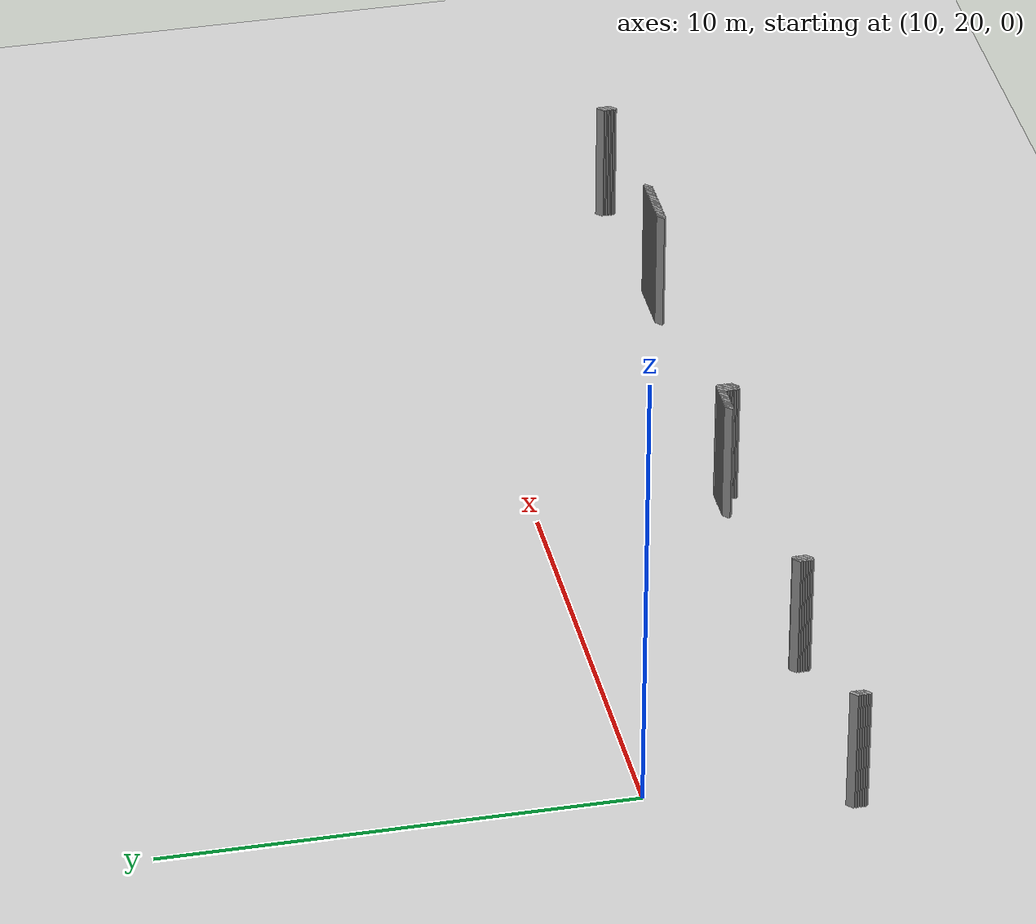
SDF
<sdf version="1.5">
 <world name="default">
  <include><uri>model://ground_plane</uri></include>
  <include><uri>model://sun</uri></include>
  <model name="grey_wall_1261">
   <static>1</static>
   <link name="link">
    <pose>19.4 16.0  1.4 0 0 -0.785398163397</pose>
    <collision name="collision"><geometry><box><size>0.0707106781187 .2  2.8</size></box></geometry></collision>
    <visual name="visual">
     <cast_shadows>0</cast_shadows>
     <geometry><box><size>0.0707106781187 .2  2.8</size></box></geometry>
     <material>
      <script>
       <uri>model://grey_wall/materials/scripts</uri>
       <uri>model://grey_wall/materials/textures</uri>
       <name>vrc/grey_wall</name>
      </script>
     </material>
    </visual>
   </link>
  </model>
  <model name="grey_wall_1262">
   <static>1</static>
   <link name="link">
    <pose>19.45 16.0  1.4 0 0 -0.785398163397</pose>
    <collision name="collision"><geometry><box><size>0.0707106781187 .2  2.8</size></box></geometry></collision>
    <visual name="visual">
     <cast_shadows>0</cast_shadows>
     <geometry><box><size>0.0707106781187 .2  2.8</size></box></geometry>
     <material>
      <script>
       <uri>model://grey_wall/materials/scripts</uri>
       <uri>model://grey_wall/materials/textures</uri>
       <name>vrc/grey_wall</name>
      </script>
     </material>
    </visual>
   </link>
  </model>
  <model name="grey_wall_1263">
   <static>1</static>
   <link name="link">
    <pose>19.5 16.0  1.4 0 0 -0.785398163397</pose>
    <collision name="collision"><geometry><box><size>0.0707106781187 .2  2.8</size></box></geometry></collision>
    <visual name="visual">
     <cast_shadows>0</cast_shadows>
     <geometry><box><size>0.0707106781187 .2  2.8</size></box></geometry>
     <material>
      <script>
       <uri>model://grey_wall/materials/scripts</uri>
       <uri>model://grey_wall/materials/textures</uri>
       <name>vrc/grey_wall</name>
      </script>
     </material>
    </visual>
   </link>
  </model>
  <model name="grey_wall_1264">
   <static>1</static>
   <link name="link">
    <pose>19.55 16.0  1.4 0 0 -0.785398163397</pose>
    <collision name="collision"><geometry><box><size>0.0707106781187 .2  2.8</size></box></geometry></collision>
    <visual name="visual">
     <cast_shadows>0</cast_shadows>
     <geometry><box><size>0.0707106781187 .2  2.8</size></box></geometry>
     <material>
      <script>
       <uri>model://grey_wall/materials/scripts</uri>
       <uri>model://grey_wall/materials/textures</uri>
       <name>vrc/grey_wall</name>
      </script>
     </material>
    </visual>
   </link>
  </model>
  <model name="grey_wall_1265">
   <static>1</static>
   <link name="link">
    <pose>19.6 16.0  1.4 0 0 -0.785398163397</pose>
    <collision name="collision"><geometry><box><size>0.0707106781187 .2  2.8</size></box></geometry></collision>
    <visual name="visual">
     <cast_shadows>0</cast_shadows>
     <geometry><box><size>0.0707106781187 .2  2.8</size></box></geometry>
     <material>
      <script>
       <uri>model://grey_wall/materials/scripts</uri>
       <uri>model://grey_wall/materials/textures</uri>
       <name>vrc/grey_wall</name>
      </script>
     </material>
    </visual>
   </link>
  </model>
  <model name="grey_wall_1266">
   <static>1</static>
   <link name="link">
    <pose>19.65 16.0  1.4 0 0 -0.785398163397</pose>
    <collision name="collision"><geometry><box><size>0.0707106781187 .2  2.8</size></box></geometry></collision>
    <visual name="visual">
     <cast_shadows>0</cast_shadows>
     <geometry><box><size>0.0707106781187 .2  2.8</size></box></geometry>
     <material>
      <script>
       <uri>model://grey_wall/materials/scripts</uri>
       <uri>model://grey_wall/materials/textures</uri>
       <name>vrc/grey_wall</name>
      </script>
     </material>
    </visual>
   </link>
  </model>
  <model name="grey_wall_1267">
   <static>1</static>
   <link name="link">
    <pose>19.7 16.0  1.4 0 0 -0.785398163397</pose>
    <collision name="collision"><geometry><box><size>0.0707106781187 .2  2.8</size></box></geometry></collision>
    <visual name="visual">
     <cast_shadows>0</cast_shadows>
     <geometry><box><size>0.0707106781187 .2  2.8</size></box></geometry>
     <material>
      <script>
       <uri>model://grey_wall/materials/scripts</uri>
       <uri>model://grey_wall/materials/textures</uri>
       <name>vrc/grey_wall</name>
      </script>
     </material>
    </visual>
   </link>
  </model>
  <model name="grey_wall_1268">
   <static>1</static>
   <link name="link">
    <pose>19.75 16.0  1.4 0 0 -0.785398163397</pose>
    <collision name="collision"><geometry><box><size>0.0707106781187 .2  2.8</size></box></geometry></collision>
    <visual name="visual">
     <cast_shadows>0</cast_shadows>
     <geometry><box><size>0.0707106781187 .2  2.8</size></box></geometry>
     <material>
      <script>
       <uri>model://grey_wall/materials/scripts</uri>
       <uri>model://grey_wall/materials/textures</uri>
       <name>vrc/grey_wall</name>
      </script>
     </material>
    </visual>
   </link>
  </model>
  <model name="grey_wall_1269">
   <static>1</static>
   <link name="link">
    <pose>19.8 16.0  1.4 0 0 -0.785398163397</pose>
    <collision name="collision"><geometry><box><size>0.0707106781187 .2  2.8</size></box></geometry></collision>
    <visual name="visual">
     <cast_shadows>0</cast_shadows>
     <geometry><box><size>0.0707106781187 .2  2.8</size></box></geometry>
     <material>
      <script>
       <uri>model://grey_wall/materials/scripts</uri>
       <uri>model://grey_wall/materials/textures</uri>
       <name>vrc/grey_wall</name>
      </script>
     </material>
    </visual>
   </link>
  </model>
  <model name="grey_wall_1270">
   <static>1</static>
   <link name="link">
    <pose>19.85 16.0  1.4 0 0 -0.785398163397</pose>
    <collision name="collision"><geometry><box><size>0.0707106781187 .2  2.8</size></box></geometry></collision>
    <visual name="visual">
     <cast_shadows>0</cast_shadows>
     <geometry><box><size>0.0707106781187 .2  2.8</size></box></geometry>
     <material>
      <script>
       <uri>model://grey_wall/materials/scripts</uri>
       <uri>model://grey_wall/materials/textures</uri>
       <name>vrc/grey_wall</name>
      </script>
     </material>
    </visual>
   </link>
  </model>
  <model name="grey_wall_1271">
   <static>1</static>
   <link name="link">
    <pose>19.9 16.0  1.4 0 0 -0.785398163397</pose>
    <collision name="collision"><geometry><box><size>0.0707106781187 .2  2.8</size></box></geometry></collision>
    <visual name="visual">
     <cast_shadows>0</cast_shadows>
     <geometry><box><size>0.0707106781187 .2  2.8</size></box></geometry>
     <material>
      <script>
       <uri>model://grey_wall/materials/scripts</uri>
       <uri>model://grey_wall/materials/textures</uri>
       <name>vrc/grey_wall</name>
      </script>
     </material>
    </visual>
   </link>
  </model>
  <model name="grey_wall_1272">
   <static>1</static>
   <link name="link">
    <pose>19.95 16.0  1.4 0 0 -0.785398163397</pose>
    <collision name="collision"><geometry><box><size>0.0707106781187 .2  2.8</size></box></geometry></collision>
    <visual name="visual">
     <cast_shadows>0</cast_shadows>
     <geometry><box><size>0.0707106781187 .2  2.8</size></box></geometry>
     <material>
      <script>
       <uri>model://grey_wall/materials/scripts</uri>
       <uri>model://grey_wall/materials/textures</uri>
       <name>vrc/grey_wall</name>
      </script>
     </material>
    </visual>
   </link>
  </model>
  <model name="grey_wall_1273">
   <static>1</static>
   <link name="link">
    <pose>20.0 16.0  1.4 0 0 -0.785398163397</pose>
    <collision name="collision"><geometry><box><size>0.0707106781187 .2  2.8</size></box></geometry></collision>
    <visual name="visual">
     <cast_shadows>0</cast_shadows>
     <geometry><box><size>0.0707106781187 .2  2.8</size></box></geometry>
     <material>
      <script>
       <uri>model://grey_wall/materials/scripts</uri>
       <uri>model://grey_wall/materials/textures</uri>
       <name>vrc/grey_wall</name>
      </script>
     </material>
    </visual>
   </link>
  </model>
  <model name="grey_wall_1274">
   <static>1</static>
   <link name="link">
    <pose>20.05 16.0  1.4 0 0 -0.785398163397</pose>
    <collision name="collision"><geometry><box><size>0.0707106781187 .2  2.8</size></box></geometry></collision>
    <visual name="visual">
     <cast_shadows>0</cast_shadows>
     <geometry><box><size>0.0707106781187 .2  2.8</size></box></geometry>
     <material>
      <script>
       <uri>model://grey_wall/materials/scripts</uri>
       <uri>model://grey_wall/materials/textures</uri>
       <name>vrc/grey_wall</name>
      </script>
     </material>
    </visual>
   </link>
  </model>
  <model name="grey_wall_1275">
   <static>1</static>
   <link name="link">
    <pose>20.1 16.0  1.4 0 0 -0.785398163397</pose>
    <collision name="collision"><geometry><box><size>0.0707106781187 .2  2.8</size></box></geometry></collision>
    <visual name="visual">
     <cast_shadows>0</cast_shadows>
     <geometry><box><size>0.0707106781187 .2  2.8</size></box></geometry>
     <material>
      <script>
       <uri>model://grey_wall/materials/scripts</uri>
       <uri>model://grey_wall/materials/textures</uri>
       <name>vrc/grey_wall</name>
      </script>
     </material>
    </visual>
   </link>
  </model>
  <model name="grey_wall_1276">
   <static>1</static>
   <link name="link">
    <pose>20.2 16.0  1.4 0 0 -0.785398163397</pose>
    <collision name="collision"><geometry><box><size>0.0707106781187 .2  2.8</size></box></geometry></collision>
    <visual name="visual">
     <cast_shadows>0</cast_shadows>
     <geometry><box><size>0.0707106781187 .2  2.8</size></box></geometry>
     <material>
      <script>
       <uri>model://grey_wall/materials/scripts</uri>
       <uri>model://grey_wall/materials/textures</uri>
       <name>vrc/grey_wall</name>
      </script>
     </material>
    </visual>
   </link>
  </model>
  <model name="grey_wall_1277">
   <static>1</static>
   <link name="link">
    <pose>31.75 16.0  1.4 0 0 -0.785398163397</pose>
    <collision name="collision"><geometry><box><size>0.0707106781187 .2  2.8</size></box></geometry></collision>
    <visual name="visual">
     <cast_shadows>0</cast_shadows>
     <geometry><box><size>0.0707106781187 .2  2.8</size></box></geometry>
     <material>
      <script>
       <uri>model://grey_wall/materials/scripts</uri>
       <uri>model://grey_wall/materials/textures</uri>
       <name>vrc/grey_wall</name>
      </script>
     </material>
    </visual>
   </link>
  </model>
  <model name="grey_wall_1278">
   <static>1</static>
   <link name="link">
    <pose>8.9 15.95  1.4 0 0 -0.785398163397</pose>
    <collision name="collision"><geometry><box><size>0.0707106781187 .2  2.8</size></box></geometry></collision>
    <visual name="visual">
     <cast_shadows>0</cast_shadows>
     <geometry><box><size>0.0707106781187 .2  2.8</size></box></geometry>
     <material>
      <script>
       <uri>model://grey_wall/materials/scripts</uri>
       <uri>model://grey_wall/materials/textures</uri>
       <name>vrc/grey_wall</name>
      </script>
     </material>
    </visual>
   </link>
  </model>
  <model name="grey_wall_1279">
   <static>1</static>
   <link name="link">
    <pose>13.65 15.95  1.4 0 0 -0.785398163397</pose>
    <collision name="collision"><geometry><box><size>0.0707106781187 .2  2.8</size></box></geometry></collision>
    <visual name="visual">
     <cast_shadows>0</cast_shadows>
     <geometry><box><size>0.0707106781187 .2  2.8</size></box></geometry>
     <material>
      <script>
       <uri>model://grey_wall/materials/scripts</uri>
       <uri>model://grey_wall/materials/textures</uri>
       <name>vrc/grey_wall</name>
      </script>
     </material>
    </visual>
   </link>
  </model>
  <model name="grey_wall_1280">
   <static>1</static>
   <link name="link">
    <pose>13.7 15.95  1.4 0 0 -0.785398163397</pose>
    <collision name="collision"><geometry><box><size>0.0707106781187 .2  2.8</size></box></geometry></collision>
    <visual name="visual">
     <cast_shadows>0</cast_shadows>
     <geometry><box><size>0.0707106781187 .2  2.8</size></box></geometry>
     <material>
      <script>
       <uri>model://grey_wall/materials/scripts</uri>
       <uri>model://grey_wall/materials/textures</uri>
       <name>vrc/grey_wall</name>
      </script>
     </material>
    </visual>
   </link>
  </model>
  <model name="grey_wall_1281">
   <static>1</static>
   <link name="link">
    <pose>20.1 15.95  1.4 0 0 -0.785398163397</pose>
    <collision name="collision"><geometry><box><size>0.0707106781187 .2  2.8</size></box></geometry></collision>
    <visual name="visual">
     <cast_shadows>0</cast_shadows>
     <geometry><box><size>0.0707106781187 .2  2.8</size></box></geometry>
     <material>
      <script>
       <uri>model://grey_wall/materials/scripts</uri>
       <uri>model://grey_wall/materials/textures</uri>
       <name>vrc/grey_wall</name>
      </script>
     </material>
    </visual>
   </link>
  </model>
  <model name="grey_wall_1282">
   <static>1</static>
   <link name="link">
    <pose>20.2 15.95  1.4 0 0 -0.785398163397</pose>
    <collision name="collision"><geometry><box><size>0.0707106781187 .2  2.8</size></box></geometry></collision>
    <visual name="visual">
     <cast_shadows>0</cast_shadows>
     <geometry><box><size>0.0707106781187 .2  2.8</size></box></geometry>
     <material>
      <script>
       <uri>model://grey_wall/materials/scripts</uri>
       <uri>model://grey_wall/materials/textures</uri>
       <name>vrc/grey_wall</name>
      </script>
     </material>
    </visual>
   </link>
  </model>
  <model name="grey_wall_1283">
   <static>1</static>
   <link name="link">
    <pose>31.75 15.95  1.4 0 0 -0.785398163397</pose>
    <collision name="collision"><geometry><box><size>0.0707106781187 .2  2.8</size></box></geometry></collision>
    <visual name="visual">
     <cast_shadows>0</cast_shadows>
     <geometry><box><size>0.0707106781187 .2  2.8</size></box></geometry>
     <material>
      <script>
       <uri>model://grey_wall/materials/scripts</uri>
       <uri>model://grey_wall/materials/textures</uri>
       <name>vrc/grey_wall</name>
      </script>
     </material>
    </visual>
   </link>
  </model>
  <model name="grey_wall_1284">
   <static>1</static>
   <link name="link">
    <pose>8.9 15.9  1.4 0 0 -0.785398163397</pose>
    <collision name="collision"><geometry><box><size>0.0707106781187 .2  2.8</size></box></geometry></collision>
    <visual name="visual">
     <cast_shadows>0</cast_shadows>
     <geometry><box><size>0.0707106781187 .2  2.8</size></box></geometry>
     <material>
      <script>
       <uri>model://grey_wall/materials/scripts</uri>
       <uri>model://grey_wall/materials/textures</uri>
       <name>vrc/grey_wall</name>
      </script>
     </material>
    </visual>
   </link>
  </model>
  <model name="grey_wall_1285">
   <static>1</static>
   <link name="link">
    <pose>13.65 15.9  1.4 0 0 -0.785398163397</pose>
    <collision name="collision"><geometry><box><size>0.0707106781187 .2  2.8</size></box></geometry></collision>
    <visual name="visual">
     <cast_shadows>0</cast_shadows>
     <geometry><box><size>0.0707106781187 .2  2.8</size></box></geometry>
     <material>
      <script>
       <uri>model://grey_wall/materials/scripts</uri>
       <uri>model://grey_wall/materials/textures</uri>
       <name>vrc/grey_wall</name>
      </script>
     </material>
    </visual>
   </link>
  </model>
  <model name="grey_wall_1286">
   <static>1</static>
   <link name="link">
    <pose>13.7 15.9  1.4 0 0 -0.785398163397</pose>
    <collision name="collision"><geometry><box><size>0.0707106781187 .2  2.8</size></box></geometry></collision>
    <visual name="visual">
     <cast_shadows>0</cast_shadows>
     <geometry><box><size>0.0707106781187 .2  2.8</size></box></geometry>
     <material>
      <script>
       <uri>model://grey_wall/materials/scripts</uri>
       <uri>model://grey_wall/materials/textures</uri>
       <name>vrc/grey_wall</name>
      </script>
     </material>
    </visual>
   </link>
  </model>
  <model name="grey_wall_1287">
   <static>1</static>
   <link name="link">
    <pose>20.1 15.9  1.4 0 0 -0.785398163397</pose>
    <collision name="collision"><geometry><box><size>0.0707106781187 .2  2.8</size></box></geometry></collision>
    <visual name="visual">
     <cast_shadows>0</cast_shadows>
     <geometry><box><size>0.0707106781187 .2  2.8</size></box></geometry>
     <material>
      <script>
       <uri>model://grey_wall/materials/scripts</uri>
       <uri>model://grey_wall/materials/textures</uri>
       <name>vrc/grey_wall</name>
      </script>
     </material>
    </visual>
   </link>
  </model>
  <model name="grey_wall_1288">
   <static>1</static>
   <link name="link">
    <pose>20.2 15.9  1.4 0 0 -0.785398163397</pose>
    <collision name="collision"><geometry><box><size>0.0707106781187 .2  2.8</size></box></geometry></collision>
    <visual name="visual">
     <cast_shadows>0</cast_shadows>
     <geometry><box><size>0.0707106781187 .2  2.8</size></box></geometry>
     <material>
      <script>
       <uri>model://grey_wall/materials/scripts</uri>
       <uri>model://grey_wall/materials/textures</uri>
       <name>vrc/grey_wall</name>
      </script>
     </material>
    </visual>
   </link>
  </model>
  <model name="grey_wall_1289">
   <static>1</static>
   <link name="link">
    <pose>31.75 15.9  1.4 0 0 -0.785398163397</pose>
    <collision name="collision"><geometry><box><size>0.0707106781187 .2  2.8</size></box></geometry></collision>
    <visual name="visual">
     <cast_shadows>0</cast_shadows>
     <geometry><box><size>0.0707106781187 .2  2.8</size></box></geometry>
     <material>
      <script>
       <uri>model://grey_wall/materials/scripts</uri>
       <uri>model://grey_wall/materials/textures</uri>
       <name>vrc/grey_wall</name>
      </script>
     </material>
    </visual>
   </link>
  </model>
  <model name="grey_wall_1290">
   <static>1</static>
   <link name="link">
    <pose>8.9 15.85  1.4 0 0 -0.785398163397</pose>
    <collision name="collision"><geometry><box><size>0.0707106781187 .2  2.8</size></box></geometry></collision>
    <visual name="visual">
     <cast_shadows>0</cast_shadows>
     <geometry><box><size>0.0707106781187 .2  2.8</size></box></geometry>
     <material>
      <script>
       <uri>model://grey_wall/materials/scripts</uri>
       <uri>model://grey_wall/materials/textures</uri>
       <name>vrc/grey_wall</name>
      </script>
     </material>
    </visual>
   </link>
  </model>
  <model name="grey_wall_1291">
   <static>1</static>
   <link name="link">
    <pose>13.65 15.85  1.4 0 0 -0.785398163397</pose>
    <collision name="collision"><geometry><box><size>0.0707106781187 .2  2.8</size></box></geometry></collision>
    <visual name="visual">
     <cast_shadows>0</cast_shadows>
     <geometry><box><size>0.0707106781187 .2  2.8</size></box></geometry>
     <material>
      <script>
       <uri>model://grey_wall/materials/scripts</uri>
       <uri>model://grey_wall/materials/textures</uri>
       <name>vrc/grey_wall</name>
      </script>
     </material>
    </visual>
   </link>
  </model>
  <model name="grey_wall_1292">
   <static>1</static>
   <link name="link">
    <pose>13.7 15.85  1.4 0 0 -0.785398163397</pose>
    <collision name="collision"><geometry><box><size>0.0707106781187 .2  2.8</size></box></geometry></collision>
    <visual name="visual">
     <cast_shadows>0</cast_shadows>
     <geometry><box><size>0.0707106781187 .2  2.8</size></box></geometry>
     <material>
      <script>
       <uri>model://grey_wall/materials/scripts</uri>
       <uri>model://grey_wall/materials/textures</uri>
       <name>vrc/grey_wall</name>
      </script>
     </material>
    </visual>
   </link>
  </model>
  <model name="grey_wall_1293">
   <static>1</static>
   <link name="link">
    <pose>20.1 15.85  1.4 0 0 -0.785398163397</pose>
    <collision name="collision"><geometry><box><size>0.0707106781187 .2  2.8</size></box></geometry></collision>
    <visual name="visual">
     <cast_shadows>0</cast_shadows>
     <geometry><box><size>0.0707106781187 .2  2.8</size></box></geometry>
     <material>
      <script>
       <uri>model://grey_wall/materials/scripts</uri>
       <uri>model://grey_wall/materials/textures</uri>
       <name>vrc/grey_wall</name>
      </script>
     </material>
    </visual>
   </link>
  </model>
  <model name="grey_wall_1294">
   <static>1</static>
   <link name="link">
    <pose>20.2 15.85  1.4 0 0 -0.785398163397</pose>
    <collision name="collision"><geometry><box><size>0.0707106781187 .2  2.8</size></box></geometry></collision>
    <visual name="visual">
     <cast_shadows>0</cast_shadows>
     <geometry><box><size>0.0707106781187 .2  2.8</size></box></geometry>
     <material>
      <script>
       <uri>model://grey_wall/materials/scripts</uri>
       <uri>model://grey_wall/materials/textures</uri>
       <name>vrc/grey_wall</name>
      </script>
     </material>
    </visual>
   </link>
  </model>
  <model name="grey_wall_1295">
   <static>1</static>
   <link name="link">
    <pose>31.75 15.85  1.4 0 0 -0.785398163397</pose>
    <collision name="collision"><geometry><box><size>0.0707106781187 .2  2.8</size></box></geometry></collision>
    <visual name="visual">
     <cast_shadows>0</cast_shadows>
     <geometry><box><size>0.0707106781187 .2  2.8</size></box></geometry>
     <material>
      <script>
       <uri>model://grey_wall/materials/scripts</uri>
       <uri>model://grey_wall/materials/textures</uri>
       <name>vrc/grey_wall</name>
      </script>
     </material>
    </visual>
   </link>
  </model>
  <model name="grey_wall_1296">
   <static>1</static>
   <link name="link">
    <pose>8.9 15.8  1.4 0 0 -0.785398163397</pose>
    <collision name="collision"><geometry><box><size>0.0707106781187 .2  2.8</size></box></geometry></collision>
    <visual name="visual">
     <cast_shadows>0</cast_shadows>
     <geometry><box><size>0.0707106781187 .2  2.8</size></box></geometry>
     <material>
      <script>
       <uri>model://grey_wall/materials/scripts</uri>
       <uri>model://grey_wall/materials/textures</uri>
       <name>vrc/grey_wall</name>
      </script>
     </material>
    </visual>
   </link>
  </model>
  <model name="grey_wall_1297">
   <static>1</static>
   <link name="link">
    <pose>13.65 15.8  1.4 0 0 -0.785398163397</pose>
    <collision name="collision"><geometry><box><size>0.0707106781187 .2  2.8</size></box></geometry></collision>
    <visual name="visual">
     <cast_shadows>0</cast_shadows>
     <geometry><box><size>0.0707106781187 .2  2.8</size></box></geometry>
     <material>
      <script>
       <uri>model://grey_wall/materials/scripts</uri>
       <uri>model://grey_wall/materials/textures</uri>
       <name>vrc/grey_wall</name>
      </script>
     </material>
    </visual>
   </link>
  </model>
  <model name="grey_wall_1298">
   <static>1</static>
   <link name="link">
    <pose>13.7 15.8  1.4 0 0 -0.785398163397</pose>
    <collision name="collision"><geometry><box><size>0.0707106781187 .2  2.8</size></box></geometry></collision>
    <visual name="visual">
     <cast_shadows>0</cast_shadows>
     <geometry><box><size>0.0707106781187 .2  2.8</size></box></geometry>
     <material>
      <script>
       <uri>model://grey_wall/materials/scripts</uri>
       <uri>model://grey_wall/materials/textures</uri>
       <name>vrc/grey_wall</name>
      </script>
     </material>
    </visual>
   </link>
  </model>
  <model name="grey_wall_1299">
   <static>1</static>
   <link name="link">
    <pose>20.1 15.8  1.4 0 0 -0.785398163397</pose>
    <collision name="collision"><geometry><box><size>0.0707106781187 .2  2.8</size></box></geometry></collision>
    <visual name="visual">
     <cast_shadows>0</cast_shadows>
     <geometry><box><size>0.0707106781187 .2  2.8</size></box></geometry>
     <material>
      <script>
       <uri>model://grey_wall/materials/scripts</uri>
       <uri>model://grey_wall/materials/textures</uri>
       <name>vrc/grey_wall</name>
      </script>
     </material>
    </visual>
   </link>
  </model>
  <model name="grey_wall_1300">
   <static>1</static>
   <link name="link">
    <pose>20.2 15.8  1.4 0 0 -0.785398163397</pose>
    <collision name="collision"><geometry><box><size>0.0707106781187 .2  2.8</size></box></geometry></collision>
    <visual name="visual">
     <cast_shadows>0</cast_shadows>
     <geometry><box><size>0.0707106781187 .2  2.8</size></box></geometry>
     <material>
      <script>
       <uri>model://grey_wall/materials/scripts</uri>
       <uri>model://grey_wall/materials/textures</uri>
       <name>vrc/grey_wall</name>
      </script>
     </material>
    </visual>
   </link>
  </model>
  <model name="grey_wall_1301">
   <static>1</static>
   <link name="link">
    <pose>31.75 15.8  1.4 0 0 -0.785398163397</pose>
    <collision name="collision"><geometry><box><size>0.0707106781187 .2  2.8</size></box></geometry></collision>
    <visual name="visual">
     <cast_shadows>0</cast_shadows>
     <geometry><box><size>0.0707106781187 .2  2.8</size></box></geometry>
     <material>
      <script>
       <uri>model://grey_wall/materials/scripts</uri>
       <uri>model://grey_wall/materials/textures</uri>
       <name>vrc/grey_wall</name>
      </script>
     </material>
    </visual>
   </link>
  </model>
  <model name="grey_wall_1302">
   <static>1</static>
   <link name="link">
    <pose>8.9 15.75  1.4 0 0 -0.785398163397</pose>
    <collision name="collision"><geometry><box><size>0.0707106781187 .2  2.8</size></box></geometry></collision>
    <visual name="visual">
     <cast_shadows>0</cast_shadows>
     <geometry><box><size>0.0707106781187 .2  2.8</size></box></geometry>
     <material>
      <script>
       <uri>model://grey_wall/materials/scripts</uri>
       <uri>model://grey_wall/materials/textures</uri>
       <name>vrc/grey_wall</name>
      </script>
     </material>
    </visual>
   </link>
  </model>
  <model name="grey_wall_1303">
   <static>1</static>
   <link name="link">
    <pose>13.65 15.75  1.4 0 0 -0.785398163397</pose>
    <collision name="collision"><geometry><box><size>0.0707106781187 .2  2.8</size></box></geometry></collision>
    <visual name="visual">
     <cast_shadows>0</cast_shadows>
     <geometry><box><size>0.0707106781187 .2  2.8</size></box></geometry>
     <material>
      <script>
       <uri>model://grey_wall/materials/scripts</uri>
       <uri>model://grey_wall/materials/textures</uri>
       <name>vrc/grey_wall</name>
      </script>
     </material>
    </visual>
   </link>
  </model>
  <model name="grey_wall_1304">
   <static>1</static>
   <link name="link">
    <pose>13.7 15.75  1.4 0 0 -0.785398163397</pose>
    <collision name="collision"><geometry><box><size>0.0707106781187 .2  2.8</size></box></geometry></collision>
    <visual name="visual">
     <cast_shadows>0</cast_shadows>
     <geometry><box><size>0.0707106781187 .2  2.8</size></box></geometry>
     <material>
      <script>
       <uri>model://grey_wall/materials/scripts</uri>
       <uri>model://grey_wall/materials/textures</uri>
       <name>vrc/grey_wall</name>
      </script>
     </material>
    </visual>
   </link>
  </model>
  <model name="grey_wall_1305">
   <static>1</static>
   <link name="link">
    <pose>20.1 15.75  1.4 0 0 -0.785398163397</pose>
    <collision name="collision"><geometry><box><size>0.0707106781187 .2  2.8</size></box></geometry></collision>
    <visual name="visual">
     <cast_shadows>0</cast_shadows>
     <geometry><box><size>0.0707106781187 .2  2.8</size></box></geometry>
     <material>
      <script>
       <uri>model://grey_wall/materials/scripts</uri>
       <uri>model://grey_wall/materials/textures</uri>
       <name>vrc/grey_wall</name>
      </script>
     </material>
    </visual>
   </link>
  </model>
  <model name="grey_wall_1306">
   <static>1</static>
   <link name="link">
    <pose>20.2 15.75  1.4 0 0 -0.785398163397</pose>
    <collision name="collision"><geometry><box><size>0.0707106781187 .2  2.8</size></box></geometry></collision>
    <visual name="visual">
     <cast_shadows>0</cast_shadows>
     <geometry><box><size>0.0707106781187 .2  2.8</size></box></geometry>
     <material>
      <script>
       <uri>model://grey_wall/materials/scripts</uri>
       <uri>model://grey_wall/materials/textures</uri>
       <name>vrc/grey_wall</name>
      </script>
     </material>
    </visual>
   </link>
  </model>
  <model name="grey_wall_1307">
   <static>1</static>
   <link name="link">
    <pose>31.75 15.75  1.4 0 0 -0.785398163397</pose>
    <collision name="collision"><geometry><box><size>0.0707106781187 .2  2.8</size></box></geometry></collision>
    <visual name="visual">
     <cast_shadows>0</cast_shadows>
     <geometry><box><size>0.0707106781187 .2  2.8</size></box></geometry>
     <material>
      <script>
       <uri>model://grey_wall/materials/scripts</uri>
       <uri>model://grey_wall/materials/textures</uri>
       <name>vrc/grey_wall</name>
      </script>
     </material>
    </visual>
   </link>
  </model>
  <model name="grey_wall_1308">
   <static>1</static>
   <link name="link">
    <pose>8.9 15.7  1.4 0 0 -0.785398163397</pose>
    <collision name="collision"><geometry><box><size>0.0707106781187 .2  2.8</size></box></geometry></collision>
    <visual name="visual">
     <cast_shadows>0</cast_shadows>
     <geometry><box><size>0.0707106781187 .2  2.8</size></box></geometry>
     <material>
      <script>
       <uri>model://grey_wall/materials/scripts</uri>
       <uri>model://grey_wall/materials/textures</uri>
       <name>vrc/grey_wall</name>
      </script>
     </material>
    </visual>
   </link>
  </model>
  <model name="grey_wall_1309">
   <static>1</static>
   <link name="link">
    <pose>13.65 15.7  1.4 0 0 -0.785398163397</pose>
    <collision name="collision"><geometry><box><size>0.0707106781187 .2  2.8</size></box></geometry></collision>
    <visual name="visual">
     <cast_shadows>0</cast_shadows>
     <geometry><box><size>0.0707106781187 .2  2.8</size></box></geometry>
     <material>
      <script>
       <uri>model://grey_wall/materials/scripts</uri>
       <uri>model://grey_wall/materials/textures</uri>
       <name>vrc/grey_wall</name>
      </script>
     </material>
    </visual>
   </link>
  </model>
  <model name="grey_wall_1310">
   <static>1</static>
   <link name="link">
    <pose>13.7 15.7  1.4 0 0 -0.785398163397</pose>
    <collision name="collision"><geometry><box><size>0.0707106781187 .2  2.8</size></box></geometry></collision>
    <visual name="visual">
     <cast_shadows>0</cast_shadows>
     <geometry><box><size>0.0707106781187 .2  2.8</size></box></geometry>
     <material>
      <script>
       <uri>model://grey_wall/materials/scripts</uri>
       <uri>model://grey_wall/materials/textures</uri>
       <name>vrc/grey_wall</name>
      </script>
     </material>
    </visual>
   </link>
  </model>
  <model name="grey_wall_1311">
   <static>1</static>
   <link name="link">
    <pose>20.1 15.7  1.4 0 0 -0.785398163397</pose>
    <collision name="collision"><geometry><box><size>0.0707106781187 .2  2.8</size></box></geometry></collision>
    <visual name="visual">
     <cast_shadows>0</cast_shadows>
     <geometry><box><size>0.0707106781187 .2  2.8</size></box></geometry>
     <material>
      <script>
       <uri>model://grey_wall/materials/scripts</uri>
       <uri>model://grey_wall/materials/textures</uri>
       <name>vrc/grey_wall</name>
      </script>
     </material>
    </visual>
   </link>
  </model>
  <model name="grey_wall_1312">
   <static>1</static>
   <link name="link">
    <pose>20.2 15.7  1.4 0 0 -0.785398163397</pose>
    <collision name="collision"><geometry><box><size>0.0707106781187 .2  2.8</size></box></geometry></collision>
    <visual name="visual">
     <cast_shadows>0</cast_shadows>
     <geometry><box><size>0.0707106781187 .2  2.8</size></box></geometry>
     <material>
      <script>
       <uri>model://grey_wall/materials/scripts</uri>
       <uri>model://grey_wall/materials/textures</uri>
       <name>vrc/grey_wall</name>
      </script>
     </material>
    </visual>
   </link>
  </model>
  <model name="grey_wall_1313">
   <static>1</static>
   <link name="link">
    <pose>27.05 15.7  1.4 0 0 -0.785398163397</pose>
    <collision name="collision"><geometry><box><size>0.0707106781187 .2  2.8</size></box></geometry></collision>
    <visual name="visual">
     <cast_shadows>0</cast_shadows>
     <geometry><box><size>0.0707106781187 .2  2.8</size></box></geometry>
     <material>
      <script>
       <uri>model://grey_wall/materials/scripts</uri>
       <uri>model://grey_wall/materials/textures</uri>
       <name>vrc/grey_wall</name>
      </script>
     </material>
    </visual>
   </link>
  </model>
  <model name="grey_wall_1314">
   <static>1</static>
   <link name="link">
    <pose>27.1 15.7  1.4 0 0 -0.785398163397</pose>
    <collision name="collision"><geometry><box><size>0.0707106781187 .2  2.8</size></box></geometry></collision>
    <visual name="visual">
     <cast_shadows>0</cast_shadows>
     <geometry><box><size>0.0707106781187 .2  2.8</size></box></geometry>
     <material>
      <script>
       <uri>model://grey_wall/materials/scripts</uri>
       <uri>model://grey_wall/materials/textures</uri>
       <name>vrc/grey_wall</name>
      </script>
     </material>
    </visual>
   </link>
  </model>
  <model name="grey_wall_1315">
   <static>1</static>
   <link name="link">
    <pose>27.15 15.7  1.4 0 0 -0.785398163397</pose>
    <collision name="collision"><geometry><box><size>0.0707106781187 .2  2.8</size></box></geometry></collision>
    <visual name="visual">
     <cast_shadows>0</cast_shadows>
     <geometry><box><size>0.0707106781187 .2  2.8</size></box></geometry>
     <material>
      <script>
       <uri>model://grey_wall/materials/scripts</uri>
       <uri>model://grey_wall/materials/textures</uri>
       <name>vrc/grey_wall</name>
      </script>
     </material>
    </visual>
   </link>
  </model>
  <model name="grey_wall_1316">
   <static>1</static>
   <link name="link">
    <pose>27.2 15.7  1.4 0 0 -0.785398163397</pose>
    <collision name="collision"><geometry><box><size>0.0707106781187 .2  2.8</size></box></geometry></collision>
    <visual name="visual">
     <cast_shadows>0</cast_shadows>
     <geometry><box><size>0.0707106781187 .2  2.8</size></box></geometry>
     <material>
      <script>
       <uri>model://grey_wall/materials/scripts</uri>
       <uri>model://grey_wall/materials/textures</uri>
       <name>vrc/grey_wall</name>
      </script>
     </material>
    </visual>
   </link>
  </model>
  <model name="grey_wall_1317">
   <static>1</static>
   <link name="link">
    <pose>27.25 15.7  1.4 0 0 -0.785398163397</pose>
    <collision name="collision"><geometry><box><size>0.0707106781187 .2  2.8</size></box></geometry></collision>
    <visual name="visual">
     <cast_shadows>0</cast_shadows>
     <geometry><box><size>0.0707106781187 .2  2.8</size></box></geometry>
     <material>
      <script>
       <uri>model://grey_wall/materials/scripts</uri>
       <uri>model://grey_wall/materials/textures</uri>
       <name>vrc/grey_wall</name>
      </script>
     </material>
    </visual>
   </link>
  </model>
  <model name="grey_wall_1318">
   <static>1</static>
   <link name="link">
    <pose>27.3 15.7  1.4 0 0 -0.785398163397</pose>
    <collision name="collision"><geometry><box><size>0.0707106781187 .2  2.8</size></box></geometry></collision>
    <visual name="visual">
     <cast_shadows>0</cast_shadows>
     <geometry><box><size>0.0707106781187 .2  2.8</size></box></geometry>
     <material>
      <script>
       <uri>model://grey_wall/materials/scripts</uri>
       <uri>model://grey_wall/materials/textures</uri>
       <name>vrc/grey_wall</name>
      </script>
     </material>
    </visual>
   </link>
  </model>
  <model name="grey_wall_1319">
   <static>1</static>
   <link name="link">
    <pose>27.35 15.7  1.4 0 0 -0.785398163397</pose>
    <collision name="collision"><geometry><box><size>0.0707106781187 .2  2.8</size></box></geometry></collision>
    <visual name="visual">
     <cast_shadows>0</cast_shadows>
     <geometry><box><size>0.0707106781187 .2  2.8</size></box></geometry>
     <material>
      <script>
       <uri>model://grey_wall/materials/scripts</uri>
       <uri>model://grey_wall/materials/textures</uri>
       <name>vrc/grey_wall</name>
      </script>
     </material>
    </visual>
   </link>
  </model>
  <model name="grey_wall_1320">
   <static>1</static>
   <link name="link">
    <pose>27.4 15.7  1.4 0 0 -0.785398163397</pose>
    <collision name="collision"><geometry><box><size>0.0707106781187 .2  2.8</size></box></geometry></collision>
    <visual name="visual">
     <cast_shadows>0</cast_shadows>
     <geometry><box><size>0.0707106781187 .2  2.8</size></box></geometry>
     <material>
      <script>
       <uri>model://grey_wall/materials/scripts</uri>
       <uri>model://grey_wall/materials/textures</uri>
       <name>vrc/grey_wall</name>
      </script>
     </material>
    </visual>
   </link>
  </model>
  <model name="grey_wall_1321">
   <static>1</static>
   <link name="link">
    <pose>27.45 15.7  1.4 0 0 -0.785398163397</pose>
    <collision name="collision"><geometry><box><size>0.0707106781187 .2  2.8</size></box></geometry></collision>
    <visual name="visual">
     <cast_shadows>0</cast_shadows>
     <geometry><box><size>0.0707106781187 .2  2.8</size></box></geometry>
     <material>
      <script>
       <uri>model://grey_wall/materials/scripts</uri>
       <uri>model://grey_wall/materials/textures</uri>
       <name>vrc/grey_wall</name>
      </script>
     </material>
    </visual>
   </link>
  </model>
  <model name="grey_wall_1322">
   <static>1</static>
   <link name="link">
    <pose>27.5 15.7  1.4 0 0 -0.785398163397</pose>
    <collision name="collision"><geometry><box><size>0.0707106781187 .2  2.8</size></box></geometry></collision>
    <visual name="visual">
     <cast_shadows>0</cast_shadows>
     <geometry><box><size>0.0707106781187 .2  2.8</size></box></geometry>
     <material>
      <script>
       <uri>model://grey_wall/materials/scripts</uri>
       <uri>model://grey_wall/materials/textures</uri>
       <name>vrc/grey_wall</name>
      </script>
     </material>
    </visual>
   </link>
  </model>
  <model name="grey_wall_1323">
   <static>1</static>
   <link name="link">
    <pose>27.55 15.7  1.4 0 0 -0.785398163397</pose>
    <collision name="collision"><geometry><box><size>0.0707106781187 .2  2.8</size></box></geometry></collision>
    <visual name="visual">
     <cast_shadows>0</cast_shadows>
     <geometry><box><size>0.0707106781187 .2  2.8</size></box></geometry>
     <material>
      <script>
       <uri>model://grey_wall/materials/scripts</uri>
       <uri>model://grey_wall/materials/textures</uri>
       <name>vrc/grey_wall</name>
      </script>
     </material>
    </visual>
   </link>
  </model>
  <model name="grey_wall_1324">
   <static>1</static>
   <link name="link">
    <pose>27.6 15.7  1.4 0 0 -0.785398163397</pose>
    <collision name="collision"><geometry><box><size>0.0707106781187 .2  2.8</size></box></geometry></collision>
    <visual name="visual">
     <cast_shadows>0</cast_shadows>
     <geometry><box><size>0.0707106781187 .2  2.8</size></box></geometry>
     <material>
      <script>
       <uri>model://grey_wall/materials/scripts</uri>
       <uri>model://grey_wall/materials/textures</uri>
       <name>vrc/grey_wall</name>
      </script>
     </material>
    </visual>
   </link>
  </model>
  <model name="grey_wall_1325">
   <static>1</static>
   <link name="link">
    <pose>27.65 15.7  1.4 0 0 -0.785398163397</pose>
    <collision name="collision"><geometry><box><size>0.0707106781187 .2  2.8</size></box></geometry></collision>
    <visual name="visual">
     <cast_shadows>0</cast_shadows>
     <geometry><box><size>0.0707106781187 .2  2.8</size></box></geometry>
     <material>
      <script>
       <uri>model://grey_wall/materials/scripts</uri>
       <uri>model://grey_wall/materials/textures</uri>
       <name>vrc/grey_wall</name>
      </script>
     </material>
    </visual>
   </link>
  </model>
  <model name="grey_wall_1326">
   <static>1</static>
   <link name="link">
    <pose>27.7 15.7  1.4 0 0 -0.785398163397</pose>
    <collision name="collision"><geometry><box><size>0.0707106781187 .2  2.8</size></box></geometry></collision>
    <visual name="visual">
     <cast_shadows>0</cast_shadows>
     <geometry><box><size>0.0707106781187 .2  2.8</size></box></geometry>
     <material>
      <script>
       <uri>model://grey_wall/materials/scripts</uri>
       <uri>model://grey_wall/materials/textures</uri>
       <name>vrc/grey_wall</name>
      </script>
     </material>
    </visual>
   </link>
  </model>
  <model name="grey_wall_1327">
   <static>1</static>
   <link name="link">
    <pose>27.75 15.7  1.4 0 0 -0.785398163397</pose>
    <collision name="collision"><geometry><box><size>0.0707106781187 .2  2.8</size></box></geometry></collision>
    <visual name="visual">
     <cast_shadows>0</cast_shadows>
     <geometry><box><size>0.0707106781187 .2  2.8</size></box></geometry>
     <material>
      <script>
       <uri>model://grey_wall/materials/scripts</uri>
       <uri>model://grey_wall/materials/textures</uri>
       <name>vrc/grey_wall</name>
      </script>
     </material>
    </visual>
   </link>
  </model>
  <model name="grey_wall_1328">
   <static>1</static>
   <link name="link">
    <pose>27.8 15.7  1.4 0 0 -0.785398163397</pose>
    <collision name="collision"><geometry><box><size>0.0707106781187 .2  2.8</size></box></geometry></collision>
    <visual name="visual">
     <cast_shadows>0</cast_shadows>
     <geometry><box><size>0.0707106781187 .2  2.8</size></box></geometry>
     <material>
      <script>
       <uri>model://grey_wall/materials/scripts</uri>
       <uri>model://grey_wall/materials/textures</uri>
       <name>vrc/grey_wall</name>
      </script>
     </material>
    </visual>
   </link>
  </model>
  <model name="grey_wall_1329">
   <static>1</static>
   <link name="link">
    <pose>27.85 15.7  1.4 0 0 -0.785398163397</pose>
    <collision name="collision"><geometry><box><size>0.0707106781187 .2  2.8</size></box></geometry></collision>
    <visual name="visual">
     <cast_shadows>0</cast_shadows>
     <geometry><box><size>0.0707106781187 .2  2.8</size></box></geometry>
     <material>
      <script>
       <uri>model://grey_wall/materials/scripts</uri>
       <uri>model://grey_wall/materials/textures</uri>
       <name>vrc/grey_wall</name>
      </script>
     </material>
    </visual>
   </link>
  </model>
  <model name="grey_wall_1330">
   <static>1</static>
   <link name="link">
    <pose>27.9 15.7  1.4 0 0 -0.785398163397</pose>
    <collision name="collision"><geometry><box><size>0.0707106781187 .2  2.8</size></box></geometry></collision>
    <visual name="visual">
     <cast_shadows>0</cast_shadows>
     <geometry><box><size>0.0707106781187 .2  2.8</size></box></geometry>
     <material>
      <script>
       <uri>model://grey_wall/materials/scripts</uri>
       <uri>model://grey_wall/materials/textures</uri>
       <name>vrc/grey_wall</name>
      </script>
     </material>
    </visual>
   </link>
  </model>
  <model name="grey_wall_1331">
   <static>1</static>
   <link name="link">
    <pose>27.95 15.7  1.4 0 0 -0.785398163397</pose>
    <collision name="collision"><geometry><box><size>0.0707106781187 .2  2.8</size></box></geometry></collision>
    <visual name="visual">
     <cast_shadows>0</cast_shadows>
     <geometry><box><size>0.0707106781187 .2  2.8</size></box></geometry>
     <material>
      <script>
       <uri>model://grey_wall/materials/scripts</uri>
       <uri>model://grey_wall/materials/textures</uri>
       <name>vrc/grey_wall</name>
      </script>
     </material>
    </visual>
   </link>
  </model>
  <model name="grey_wall_1332">
   <static>1</static>
   <link name="link">
    <pose>28.0 15.7  1.4 0 0 -0.785398163397</pose>
    <collision name="collision"><geometry><box><size>0.0707106781187 .2  2.8</size></box></geometry></collision>
    <visual name="visual">
     <cast_shadows>0</cast_shadows>
     <geometry><box><size>0.0707106781187 .2  2.8</size></box></geometry>
     <material>
      <script>
       <uri>model://grey_wall/materials/scripts</uri>
       <uri>model://grey_wall/materials/textures</uri>
       <name>vrc/grey_wall</name>
      </script>
     </material>
    </visual>
   </link>
  </model>
  <model name="grey_wall_1333">
   <static>1</static>
   <link name="link">
    <pose>28.05 15.7  1.4 0 0 -0.785398163397</pose>
    <collision name="collision"><geometry><box><size>0.0707106781187 .2  2.8</size></box></geometry></collision>
    <visual name="visual">
     <cast_shadows>0</cast_shadows>
     <geometry><box><size>0.0707106781187 .2  2.8</size></box></geometry>
     <material>
      <script>
       <uri>model://grey_wall/materials/scripts</uri>
       <uri>model://grey_wall/materials/textures</uri>
       <name>vrc/grey_wall</name>
      </script>
     </material>
    </visual>
   </link>
  </model>
  <model name="grey_wall_1334">
   <static>1</static>
   <link name="link">
    <pose>28.1 15.7  1.4 0 0 -0.785398163397</pose>
    <collision name="collision"><geometry><box><size>0.0707106781187 .2  2.8</size></box></geometry></collision>
    <visual name="visual">
     <cast_shadows>0</cast_shadows>
     <geometry><box><size>0.0707106781187 .2  2.8</size></box></geometry>
     <material>
      <script>
       <uri>model://grey_wall/materials/scripts</uri>
       <uri>model://grey_wall/materials/textures</uri>
       <name>vrc/grey_wall</name>
      </script>
     </material>
    </visual>
   </link>
  </model>
  <model name="grey_wall_1335">
   <static>1</static>
   <link name="link">
    <pose>28.15 15.7  1.4 0 0 -0.785398163397</pose>
    <collision name="collision"><geometry><box><size>0.0707106781187 .2  2.8</size></box></geometry></collision>
    <visual name="visual">
     <cast_shadows>0</cast_shadows>
     <geometry><box><size>0.0707106781187 .2  2.8</size></box></geometry>
     <material>
      <script>
       <uri>model://grey_wall/materials/scripts</uri>
       <uri>model://grey_wall/materials/textures</uri>
       <name>vrc/grey_wall</name>
      </script>
     </material>
    </visual>
   </link>
  </model>
  <model name="grey_wall_1336">
   <static>1</static>
   <link name="link">
    <pose>28.2 15.7  1.4 0 0 -0.785398163397</pose>
    <collision name="collision"><geometry><box><size>0.0707106781187 .2  2.8</size></box></geometry></collision>
    <visual name="visual">
     <cast_shadows>0</cast_shadows>
     <geometry><box><size>0.0707106781187 .2  2.8</size></box></geometry>
     <material>
      <script>
       <uri>model://grey_wall/materials/scripts</uri>
       <uri>model://grey_wall/materials/textures</uri>
       <name>vrc/grey_wall</name>
      </script>
     </material>
    </visual>
   </link>
  </model>
  <model name="grey_wall_1337">
   <static>1</static>
   <link name="link">
    <pose>28.25 15.7  1.4 0 0 -0.785398163397</pose>
    <collision name="collision"><geometry><box><size>0.0707106781187 .2  2.8</size></box></geometry></collision>
    <visual name="visual">
     <cast_shadows>0</cast_shadows>
     <geometry><box><size>0.0707106781187 .2  2.8</size></box></geometry>
     <material>
      <script>
       <uri>model://grey_wall/materials/scripts</uri>
       <uri>model://grey_wall/materials/textures</uri>
       <name>vrc/grey_wall</name>
      </script>
     </material>
    </visual>
   </link>
  </model>
  <model name="grey_wall_1338">
   <static>1</static>
   <link name="link">
    <pose>28.3 15.7  1.4 0 0 -0.785398163397</pose>
    <collision name="collision"><geometry><box><size>0.0707106781187 .2  2.8</size></box></geometry></collision>
    <visual name="visual">
     <cast_shadows>0</cast_shadows>
     <geometry><box><size>0.0707106781187 .2  2.8</size></box></geometry>
     <material>
      <script>
       <uri>model://grey_wall/materials/scripts</uri>
       <uri>model://grey_wall/materials/textures</uri>
       <name>vrc/grey_wall</name>
      </script>
     </material>
    </visual>
   </link>
  </model>
  <model name="grey_wall_1339">
   <static>1</static>
   <link name="link">
    <pose>28.35 15.7  1.4 0 0 -0.785398163397</pose>
    <collision name="collision"><geometry><box><size>0.0707106781187 .2  2.8</size></box></geometry></collision>
    <visual name="visual">
     <cast_shadows>0</cast_shadows>
     <geometry><box><size>0.0707106781187 .2  2.8</size></box></geometry>
     <material>
      <script>
       <uri>model://grey_wall/materials/scripts</uri>
       <uri>model://grey_wall/materials/textures</uri>
       <name>vrc/grey_wall</name>
      </script>
     </material>
    </visual>
   </link>
  </model>
 </world>
</sdf>
